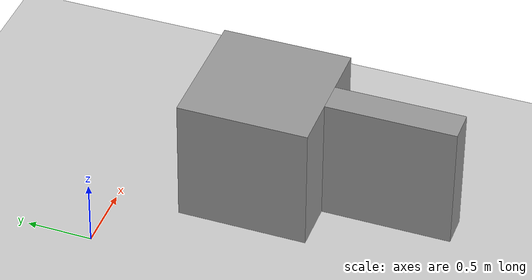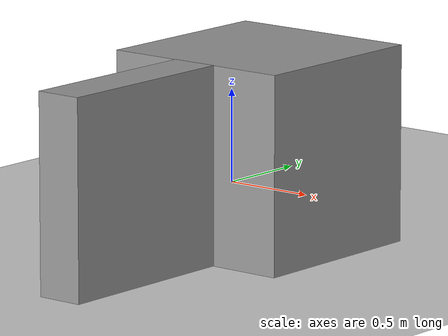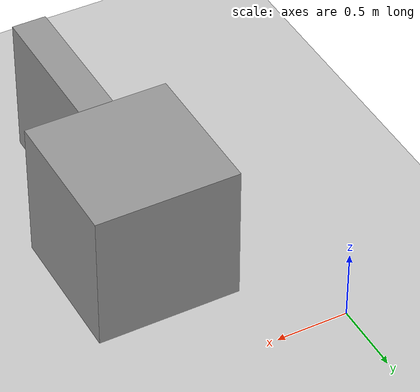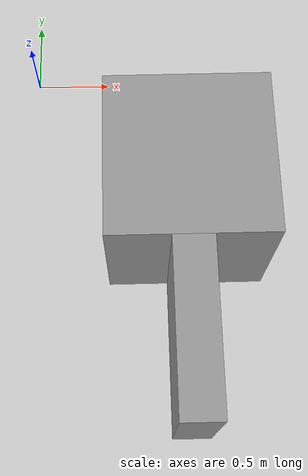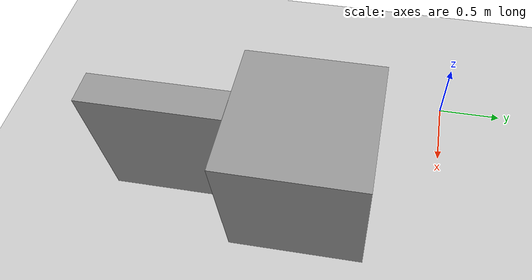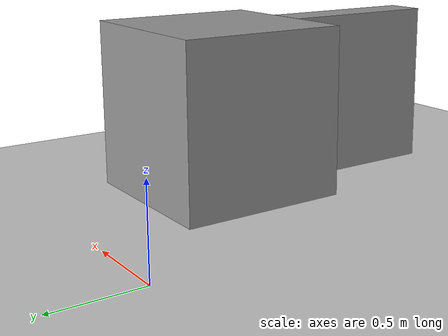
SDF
<sdf version="1.5">
 <world name="default">
  <light name="sun" type="directional">
   <pose>0 0 10 0 -0 0</pose>
   <diffuse>0.8 0.8 0.8 1</diffuse>
   <specular>0.2 0.2 0.2 1</specular>
   <attenuation>
    <range>1000</range>
    <constant>0.9</constant>
    <linear>0.01</linear>
    <quadratic>0.001</quadratic>
   </attenuation>
   <direction>-0.5 0.1 -0.9</direction>
  </light>
  <model name="ground_plane">
   <static>1</static>
   <link name="link">
    <collision name="collision">
     <geometry><plane><normal>0 0 1</normal><size>100 100</size></plane></geometry>
     <surface><friction><ode><mu>100</mu><mu2>50</mu2></ode></friction></surface>
    </collision>
    <visual name="visual">
     <cast_shadows>0</cast_shadows>
     <geometry><plane><normal>0 0 1</normal><size>100 100</size></plane></geometry>
     <material>
      <script><uri>file://media/materials/scripts/gazebo.material</uri><name>Gazebo/Grey</name></script>
     </material>
    </visual>
   </link>
  </model>
  <physics type="ode">
   <max_step_size>0.001</max_step_size>
   <real_time_factor>1</real_time_factor>
   <real_time_update_rate>1000</real_time_update_rate>
   <gravity>0 0 -9.8</gravity>
   <magnetic_field>5.5645e-06 2.28758e-05 -4.23884e-05</magnetic_field>
  </physics>
  <scene><ambient>0.4 0.4 0.4 1</ambient><background>0.7 0.7 0.7 1</background><shadows>1</shadows></scene>
  <spherical_coordinates>
   <surface_model>EARTH_WGS84</surface_model>
   <latitude_deg>0</latitude_deg>
   <longitude_deg>0</longitude_deg>
   <elevation>0</elevation>
   <heading_deg>0</heading_deg>
  </spherical_coordinates>
  <model name="unit_box_1">
   <pose>0.999998 -2 0.5 8.07794e-28 -2e-06 -1e-06</pose>
   <link name="link">
    <inertial>
     <mass>1</mass>
     <inertia><ixx>1</ixx><ixy>0</ixy><ixz>0</ixz><iyy>1</iyy><iyz>0</iyz><izz>1</izz></inertia>
    </inertial>
    <collision name="collision"><geometry><box><size>0.241761 1 1</size></box></geometry></collision>
    <visual name="visual">
     <geometry><box><size>0.241761 1 1</size></box></geometry>
     <material>
      <script><uri>file://media/materials/scripts/gazebo.material</uri><name>Gazebo/Grey</name></script>
     </material>
    </visual>
   </link>
  </model>
  <model name="unit_box_2">
   <pose>0.999998 -1 0.498834 -1e-06 -8.07794e-28 -2e-06</pose>
   <link name="link">
    <inertial>
     <mass>1</mass>
     <inertia><ixx>1</ixx><ixy>0</ixy><ixz>0</ixz><iyy>1</iyy><iyz>0</iyz><izz>1</izz></inertia>
    </inertial>
    <collision name="collision"><geometry><box><size>1 1 1</size></box></geometry></collision>
    <visual name="visual">
     <geometry><box><size>1 1 1</size></box></geometry>
     <material>
      <script><uri>file://media/materials/scripts/gazebo.material</uri><name>Gazebo/Grey</name></script>
     </material>
    </visual>
   </link>
  </model>
 </world>
</sdf>
